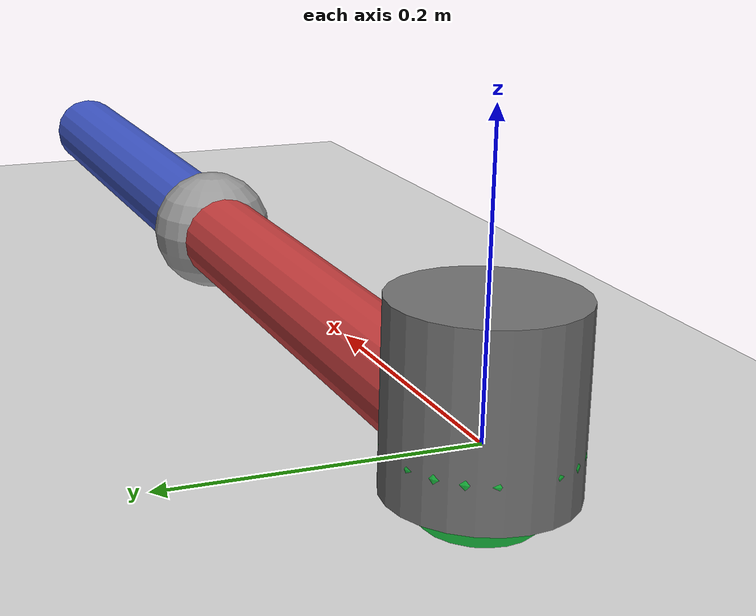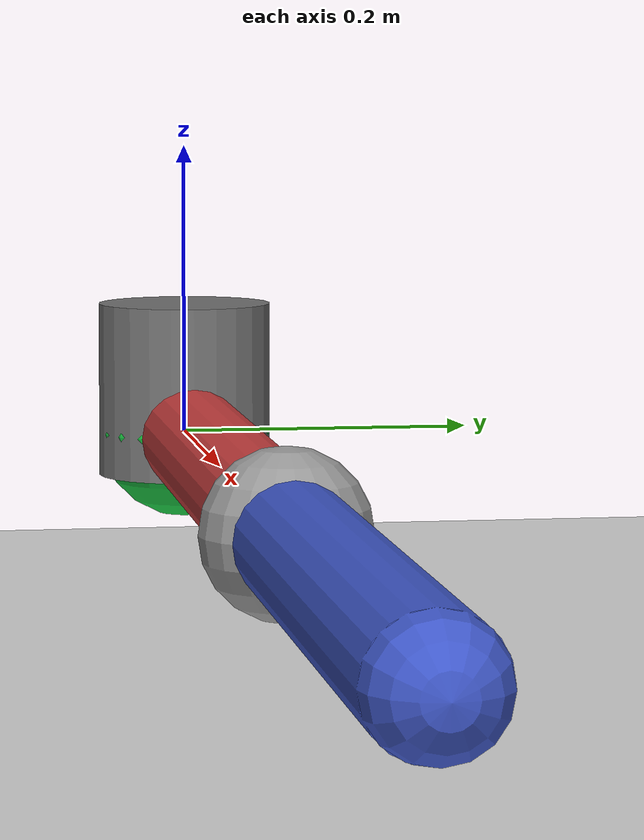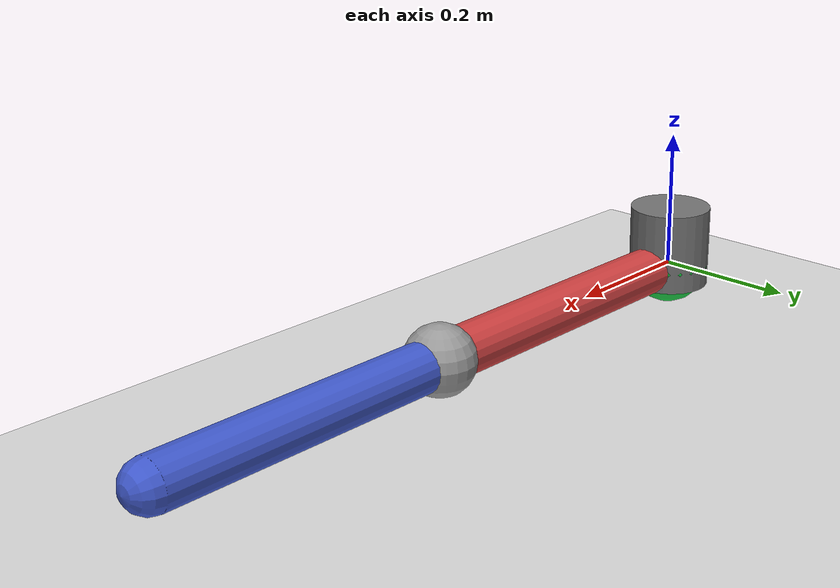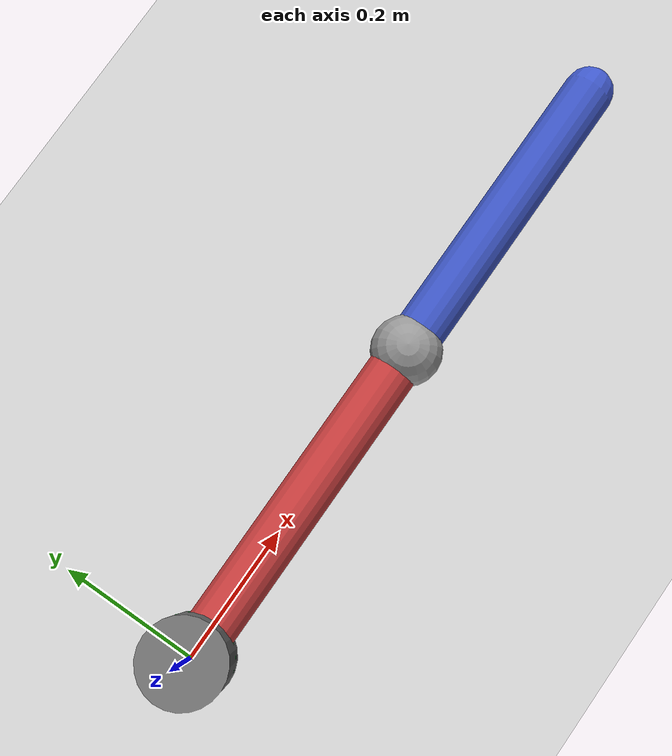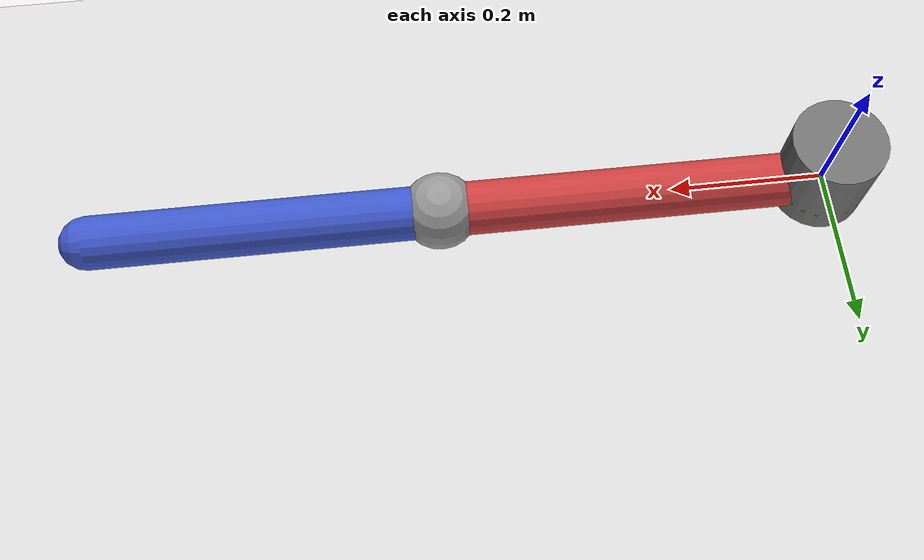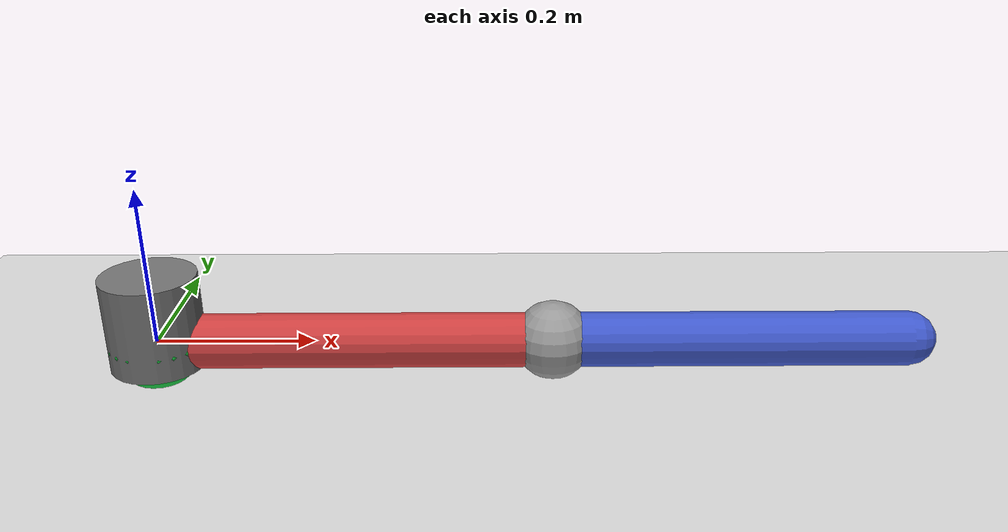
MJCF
<mujoco model="three_joint_arm">
  <compiler angle="radian" autolimits="true"/>
  <!-- Zero-gravity reacher: pure inertial control, mirrors the planar task. -->
  <option timestep="0.02" gravity="0 0 0" integrator="Euler"/>

  <default>
    <joint damping="0.4" armature="0.02"/>
    <geom friction="0.6 0.1 0.1" density="300"/>
    <motor ctrllimited="true" ctrlrange="-1 1" forcerange="-1 1"/>
  </default>

  <asset>
    <texture name="tex" type="2d" builtin="checker" rgb1="0.18 0.18 0.18" rgb2="0.28 0.28 0.28" width="256" height="256"/>
    <material name="floor" texture="tex" texrepeat="5 5" reflectance="0.3"/>
  </asset>

  <worldbody>
    <light name="light" pos="1.5 -1.0 2.5" dir="-0.4 0.3 -1" diffuse="0.9 0.9 0.9" specular="0.1 0.1 0.1"/>
    <camera name="cam_iso" pos="1.6 -1.6 1.3" xyaxes="0.7071 0.7071 0 -0.3536 0.3536 0.8698" fovy="50"/>
    <!-- Floor is purely visual (no contact) so the arm can never get stuck. -->
    <geom name="floor" type="plane" size="3 3 0.1" pos="0 0 -0.14" rgba="0.85 0.85 0.85 1" material="floor" contype="0" conaffinity="0"/>

    <!-- Base with yaw joint about world z. -->
    <body name="base" pos="0 0 0">
      <joint name="j1" type="hinge" axis="0 0 1"/>
      <geom name="base_cyl" type="cylinder" size="0.06 0.06" pos="0 0 0.03" rgba="0.45 0.45 0.45 1"/>
      <geom name="base_joint_ball" type="sphere" size="0.05" pos="0 0 0.02" rgba="0.35 0.35 0.35 1"/>
      <site name="base_site" pos="0 0 0"/>

      <!-- Upper arm: shoulder pitch about local y. -->
      <body name="upper" pos="0 0 0">
        <joint name="j2" type="hinge" axis="0 1 0"/>
        <geom name="upper_bearing" type="sphere" size="0.05" pos="0 0 0" rgba="0.6 0.6 0.6 1"/>
        <geom name="upper_geom" type="capsule" fromto="0 0 0 0.5 0 0" size="0.035" rgba="0.80 0.25 0.25 1"/>
        <site name="elbow" pos="0.5 0 0"/>

        <!-- Forearm: elbow pitch about local y. -->
        <body name="fore" pos="0.5 0 0">
          <joint name="j3" type="hinge" axis="0 1 0"/>
          <geom name="fore_bearing" type="sphere" size="0.05" pos="0 0 0" rgba="0.6 0.6 0.6 1"/>
          <geom name="fore_geom" type="capsule" fromto="0 0 0 0.45 0 0" size="0.035" rgba="0.25 0.35 0.80 1"/>
          <site name="tip" pos="0.45 0 0"/>
        </body>
      </body>
    </body>

    <!-- Kinematic 3D target (mocap, massless, no contact). -->
    <body name="target" mocap="true">
      <geom name="target_geom" type="sphere" size="0.06" rgba="0.10 0.75 0.25 1" contype="0" conaffinity="0"/>
      <site name="target_site" pos="0 0 0"/>
    </body>
  </worldbody>

  <actuator>
    <motor name="a1" joint="j1" gear="6.0"/>
    <motor name="a2" joint="j2" gear="6.0"/>
    <motor name="a3" joint="j3" gear="4.0"/>
  </actuator>

  <sensor>
    <jointpos name="jp1" joint="j1"/>
    <jointpos name="jp2" joint="j2"/>
    <jointpos name="jp3" joint="j3"/>
    <jointvel name="jv1" joint="j1"/>
    <jointvel name="jv2" joint="j2"/>
    <jointvel name="jv3" joint="j3"/>
  </sensor>
</mujoco>
